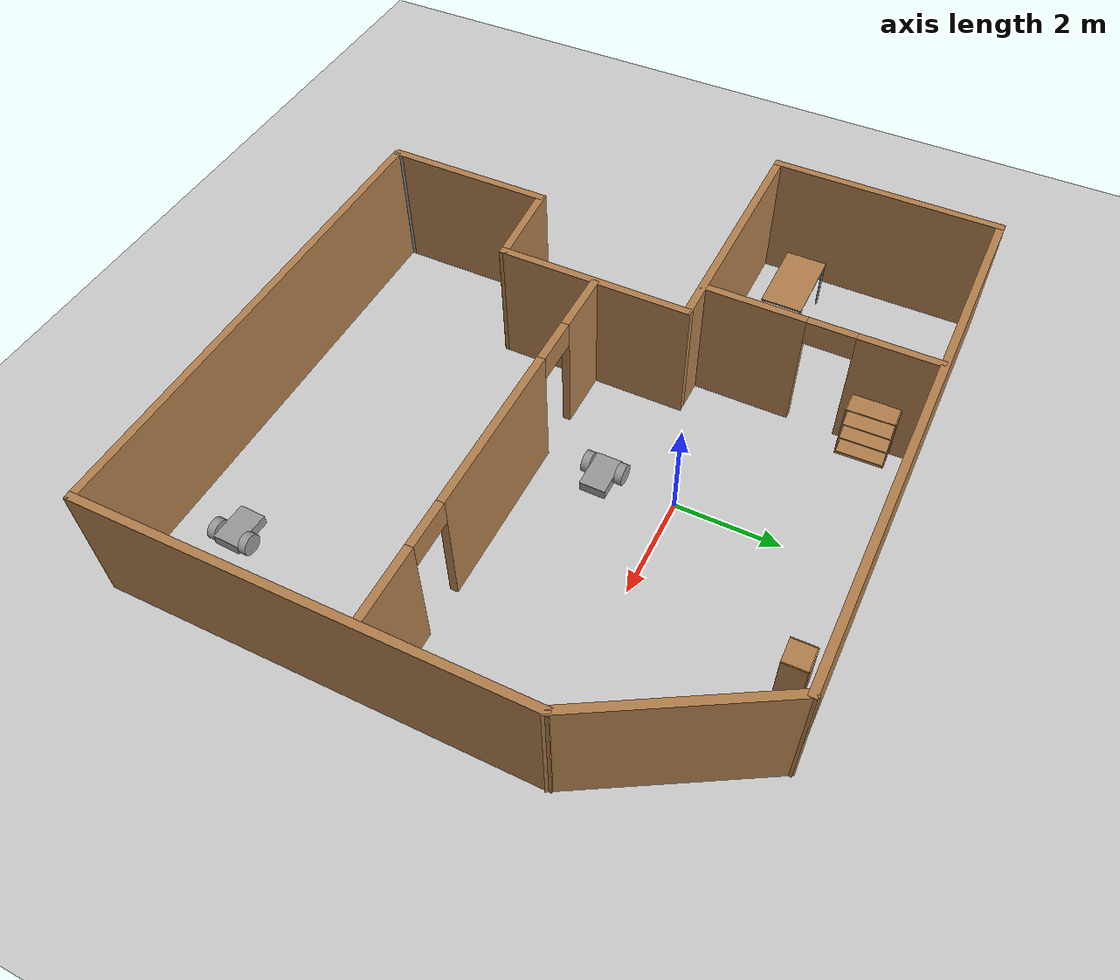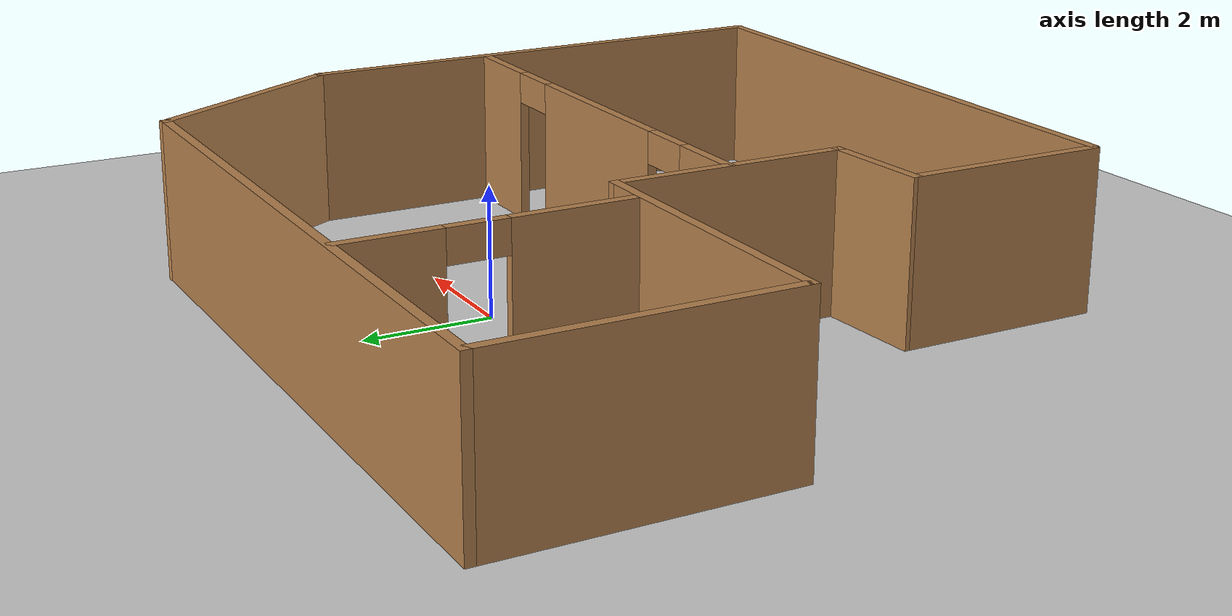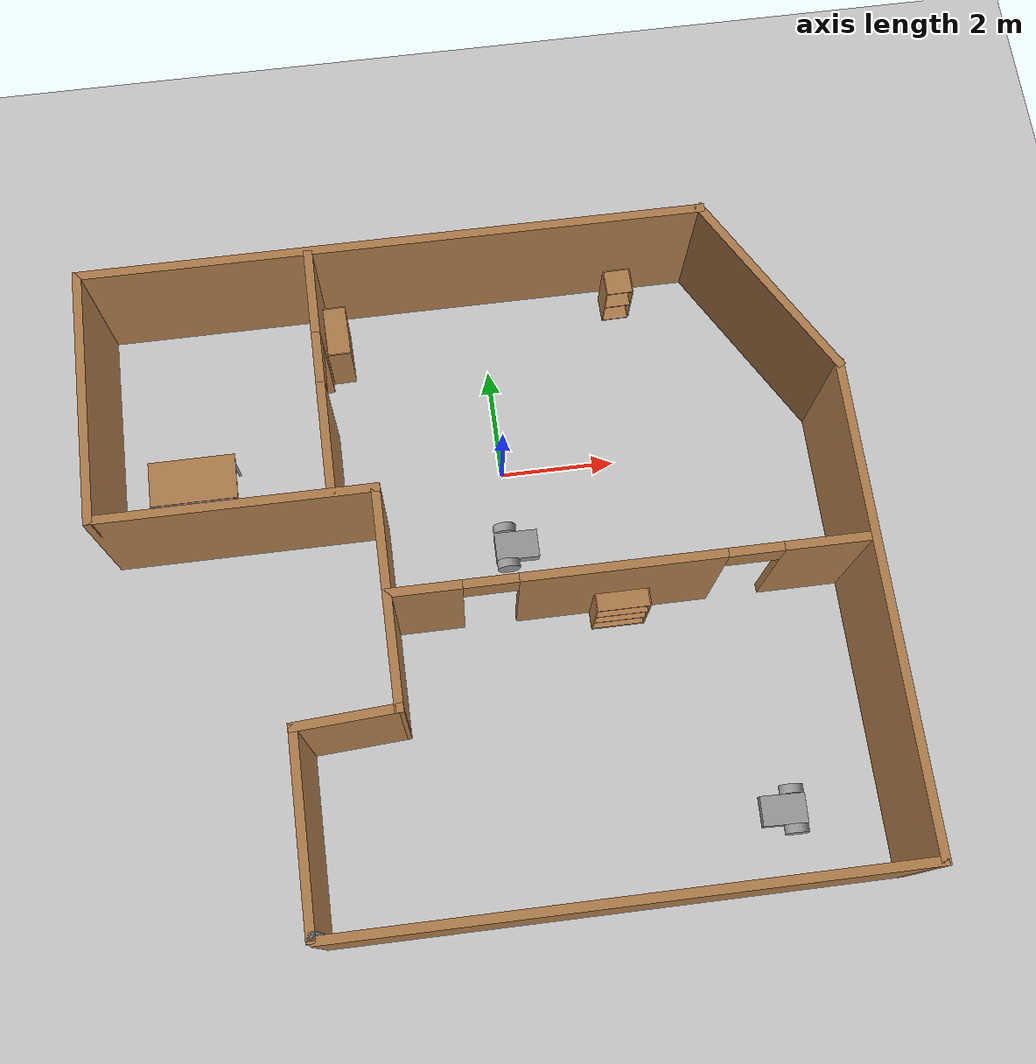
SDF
<sdf version="1.7">
 <world name="default">
  <plugin name="Welcome to 's World!" filename="libwelcome.so"/>
  <light name="sun" type="directional">
   <pose>0 0 10 0 -0 0</pose>
   <diffuse>0.8 0.8 0.8 1</diffuse>
   <specular>0.2 0.2 0.2 1</specular>
   <attenuation>
    <range>1000</range>
    <constant>0.9</constant>
    <linear>0.01</linear>
    <quadratic>0.001</quadratic>
   </attenuation>
   <direction>-0.5 0.1 -0.9</direction>
   <spot><inner_angle>0</inner_angle><outer_angle>0</outer_angle><falloff>0</falloff></spot>
  </light>
  <model name="ground_plane">
   <static>1</static>
   <link name="link">
    <collision name="collision">
     <geometry><plane><normal>0 0 1</normal><size>100 100</size></plane></geometry>
     <surface><friction><ode><mu>100</mu><mu2>50</mu2></ode></friction></surface>
    </collision>
    <visual name="visual">
     <cast_shadows>0</cast_shadows>
     <geometry><plane><normal>0 0 1</normal><size>100 100</size></plane></geometry>
     <material>
      <script><uri>file://media/materials/scripts/gazebo.material</uri><name>Gazebo/Grey</name></script>
     </material>
    </visual>
   </link>
  </model>
  <gravity>0 0 -9.8</gravity>
  <magnetic_field>6e-06 2.3e-05 -4.2e-05</magnetic_field>
  <atmosphere type="adiabatic"/>
  <physics type="ode">
   <max_step_size>0.001</max_step_size>
   <real_time_factor>1</real_time_factor>
   <real_time_update_rate>1000</real_time_update_rate>
  </physics>
  <scene><ambient>0.4 0.4 0.4 1</ambient><background>0.7 0.7 0.7 1</background><shadows>1</shadows></scene>
  <spherical_coordinates>
   <surface_model>EARTH_WGS84</surface_model>
   <latitude_deg>0</latitude_deg>
   <longitude_deg>0</longitude_deg>
   <elevation>0</elevation>
   <heading_deg>0</heading_deg>
  </spherical_coordinates>
  <model name="my_building_1">
   <pose>-0.566464 -2.09301 0 0 -0 0</pose>
   <link name="Wall_41">
    <collision name="Wall_41_Collision">
     <geometry><box><size>9.5 0.15 2.5</size></box></geometry>
     <pose>0 0 1.25 0 -0 0</pose>
    </collision>
    <visual name="Wall_41_Visual">
     <pose>0 0 1.25 0 -0 0</pose>
     <geometry><box><size>9.5 0.15 2.5</size></box></geometry>
     <material>
      <script><uri>file://media/materials/scripts/gazebo.material</uri><name>Gazebo/Wood</name></script>
      <ambient>1 1 1 1</ambient>
     </material>
     <meta><layer>0</layer></meta>
    </visual>
    <pose>1.48467 -5.62256 0 0 -0 0</pose>
   </link>
   <link name="Wall_42">
    <collision name="Wall_42_Collision">
     <geometry><box><size>8.25004 0.15 2.5</size></box></geometry>
     <pose>0 0 1.25 0 -0 0</pose>
    </collision>
    <visual name="Wall_42_Visual">
     <pose>0 0 1.25 0 -0 0</pose>
     <geometry><box><size>8.25004 0.15 2.5</size></box></geometry>
     <material>
      <script><uri>file://media/materials/scripts/gazebo.material</uri><name>Gazebo/Wood</name></script>
      <ambient>1 1 1 1</ambient>
     </material>
     <meta><layer>0</layer></meta>
    </visual>
    <pose>6.18627 -1.57256 0 0 -0 1.5708</pose>
   </link>
   <link name="Wall_43">
    <collision name="Wall_43_Collision">
     <geometry><box><size>3.75 0.15 2.5</size></box></geometry>
     <pose>0 0 1.25 0 -0 0</pose>
    </collision>
    <visual name="Wall_43_Visual">
     <pose>0 0 1.25 0 -0 0</pose>
     <geometry><box><size>3.75 0.15 2.5</size></box></geometry>
     <material>
      <script><uri>file://media/materials/scripts/gazebo.material</uri><name>Gazebo/Wood</name></script>
      <ambient>1 1 1 1</ambient>
     </material>
     <meta><layer>0</layer></meta>
    </visual>
    <pose>5.28627 4.03629 0 0 -0 2.0944</pose>
   </link>
   <link name="Wall_44">
    <collision name="Wall_44_Collision">
     <geometry><box><size>10.75 0.15 2.5</size></box></geometry>
     <pose>0 0 1.25 0 -0 0</pose>
    </collision>
    <visual name="Wall_44_Visual">
     <pose>0 0 1.25 0 -0 0</pose>
     <geometry><box><size>10.75 0.15 2.5</size></box></geometry>
     <material>
      <script><uri>file://media/materials/scripts/gazebo.material</uri><name>Gazebo/Wood</name></script>
      <ambient>1 1 1 1</ambient>
     </material>
     <meta><layer>0</layer></meta>
    </visual>
    <pose>-0.913726 5.59513 0 0 -0 3.14159</pose>
   </link>
   <link name="Wall_45">
    <collision name="Wall_45_Collision">
     <geometry><box><size>4.5 0.15 2.5</size></box></geometry>
     <pose>0 0 1.25 0 -0 0</pose>
    </collision>
    <visual name="Wall_45_Visual">
     <pose>0 0 1.25 0 -0 0</pose>
     <geometry><box><size>4.5 0.15 2.5</size></box></geometry>
     <material>
      <script><uri>file://media/materials/scripts/gazebo.material</uri><name>Gazebo/Wood</name></script>
      <ambient>1 1 1 1</ambient>
     </material>
     <meta><layer>0</layer></meta>
    </visual>
    <pose>-6.21373 3.42013 0 0 -0 -1.5708</pose>
   </link>
   <link name="Wall_46">
    <collision name="Wall_46_Collision">
     <geometry><box><size>4.75 0.15 2.5</size></box></geometry>
     <pose>0 0 1.25 0 -0 0</pose>
    </collision>
    <visual name="Wall_46_Visual">
     <pose>0 0 1.25 0 -0 0</pose>
     <geometry><box><size>4.75 0.15 2.5</size></box></geometry>
     <material>
      <script><uri>file://media/materials/scripts/gazebo.material</uri><name>Gazebo/Wood</name></script>
      <ambient>1 1 1 1</ambient>
     </material>
     <meta><layer>0</layer></meta>
    </visual>
    <pose>-3.91373 1.24513 0 0 -0 0</pose>
   </link>
   <link name="Wall_47">
    <collision name="Wall_47_Collision">
     <geometry><box><size>3.75 0.15 2.5</size></box></geometry>
     <pose>0 0 1.25 0 -0 0</pose>
    </collision>
    <visual name="Wall_47_Visual">
     <pose>0 0 1.25 0 -0 0</pose>
     <geometry><box><size>3.75 0.15 2.5</size></box></geometry>
     <material>
      <script><uri>file://media/materials/scripts/gazebo.material</uri><name>Gazebo/Wood</name></script>
      <ambient>1 1 1 1</ambient>
     </material>
     <meta><layer>0</layer></meta>
    </visual>
    <pose>-1.61373 -0.554869 0 0 -0 -1.5708</pose>
   </link>
   <link name="Wall_48">
    <collision name="Wall_48_Collision">
     <geometry><box><size>1.79152 0.15 2.5</size></box></geometry>
     <pose>0 0 1.25 0 -0 0</pose>
    </collision>
    <visual name="Wall_48_Visual">
     <pose>0 0 1.25 0 -0 0</pose>
     <geometry><box><size>1.79152 0.15 2.5</size></box></geometry>
     <material>
      <script><uri>file://media/materials/scripts/gazebo.material</uri><name>Gazebo/Wood</name></script>
      <ambient>1 1 1 1</ambient>
     </material>
     <meta><layer>0</layer></meta>
    </visual>
    <pose>-2.43301 -2.40408 0 0 -0 -3.0816</pose>
   </link>
   <link name="Wall_49">
    <collision name="Wall_49_Collision">
     <geometry><box><size>3.25 0.15 2.5</size></box></geometry>
     <pose>0 0 1.25 0 -0 0</pose>
    </collision>
    <visual name="Wall_49_Visual">
     <pose>0 0 1.25 0 -0 0</pose>
     <geometry><box><size>3.25 0.15 2.5</size></box></geometry>
     <material>
      <script><uri>file://media/materials/scripts/gazebo.material</uri><name>Gazebo/Wood</name></script>
      <ambient>1 1 1 1</ambient>
     </material>
     <meta><layer>0</layer></meta>
    </visual>
    <pose>-3.2523 -4.03388 0 0 -0 -1.5708</pose>
   </link>
   <link name="Wall_50">
    <collision name="Wall_50_Collision">
     <geometry><box><size>0.15 0.15 2.5</size></box></geometry>
     <pose>0 0 1.25 0 -0 0</pose>
    </collision>
    <visual name="Wall_50_Visual">
     <pose>0 0 1.25 0 -0 0</pose>
     <geometry><box><size>0.15 0.15 2.5</size></box></geometry>
     <material>
      <script><uri>file://media/materials/scripts/gazebo.material</uri><name>Gazebo/Grey</name></script>
      <ambient>1 1 1 1</ambient>
     </material>
     <meta><layer>0</layer></meta>
    </visual>
    <pose>-3.2523 -5.55329 0 0 -0 0</pose>
   </link>
   <link name="Wall_52">
    <pose>-2.32534 3.41711 0 0 -0 1.5708</pose>
    <visual name="Wall_52_Visual_0">
     <pose>-1.21883 0 1.25 0 -0 0</pose>
     <geometry><box><size>1.96234 0.15 2.5</size></box></geometry>
     <material>
      <script><uri>file://media/materials/scripts/gazebo.material</uri><name>Gazebo/Wood</name></script>
      <ambient>1 1 1 1</ambient>
     </material>
     <meta><layer>0</layer></meta>
    </visual>
    <collision name="Wall_52_Collision_0">
     <geometry><box><size>1.96234 0.15 2.5</size></box></geometry>
     <pose>-1.21883 0 1.25 0 -0 0</pose>
    </collision>
    <visual name="Wall_52_Visual_1">
     <pose>1.43117 0 1.25 0 -0 0</pose>
     <geometry><box><size>1.53766 0.15 2.5</size></box></geometry>
     <material>
      <script><uri>file://media/materials/scripts/gazebo.material</uri><name>Gazebo/Wood</name></script>
      <ambient>1 1 1 1</ambient>
     </material>
     <meta><layer>0</layer></meta>
    </visual>
    <collision name="Wall_52_Collision_1">
     <geometry><box><size>1.53766 0.15 2.5</size></box></geometry>
     <pose>1.43117 0 1.25 0 -0 0</pose>
    </collision>
    <visual name="Wall_52_Visual_2">
     <pose>0.212344 0 2.25 0 -0 0</pose>
     <geometry><box><size>0.9 0.15 0.5</size></box></geometry>
     <material>
      <script><uri>file://media/materials/scripts/gazebo.material</uri><name>Gazebo/Wood</name></script>
      <ambient>1 1 1 1</ambient>
     </material>
     <meta><layer>0</layer></meta>
    </visual>
    <collision name="Wall_52_Collision_2">
     <geometry><box><size>0.9 0.15 0.5</size></box></geometry>
     <pose>0.212344 0 2.25 0 -0 0</pose>
    </collision>
   </link>
   <link name="Wall_54">
    <pose>2.21366 -0.525889 0 0 -0 0</pose>
    <visual name="Wall_54_Visual_0">
     <pose>-3.26596 0 1.25 0 -0 0</pose>
     <geometry><box><size>1.26809 0.15 2.5</size></box></geometry>
     <material>
      <script><uri>file://media/materials/scripts/gazebo.material</uri><name>Gazebo/Wood</name></script>
      <ambient>1 1 1 1</ambient>
     </material>
     <meta><layer>0</layer></meta>
    </visual>
    <collision name="Wall_54_Collision_0">
     <geometry><box><size>1.26809 0.15 2.5</size></box></geometry>
     <pose>-3.26596 0 1.25 0 -0 0</pose>
    </collision>
    <visual name="Wall_54_Visual_1">
     <pose>-0.065074 0 1.25 0 -0 0</pose>
     <geometry><box><size>3.33368 0.15 2.5</size></box></geometry>
     <material>
      <script><uri>file://media/materials/scripts/gazebo.material</uri><name>Gazebo/Wood</name></script>
      <ambient>1 1 1 1</ambient>
     </material>
     <meta><layer>0</layer></meta>
    </visual>
    <collision name="Wall_54_Collision_1">
     <geometry><box><size>3.33368 0.15 2.5</size></box></geometry>
     <pose>-0.065074 0 1.25 0 -0 0</pose>
    </collision>
    <visual name="Wall_54_Visual_2">
     <pose>3.20088 0 1.25 0 -0 0</pose>
     <geometry><box><size>1.39824 0.15 2.5</size></box></geometry>
     <material>
      <script><uri>file://media/materials/scripts/gazebo.material</uri><name>Gazebo/Wood</name></script>
      <ambient>1 1 1 1</ambient>
     </material>
     <meta><layer>0</layer></meta>
    </visual>
    <collision name="Wall_54_Collision_2">
     <geometry><box><size>1.39824 0.15 2.5</size></box></geometry>
     <pose>3.20088 0 1.25 0 -0 0</pose>
    </collision>
    <visual name="Wall_54_Visual_3">
     <pose>-2.18191 0 2.25 0 -0 0</pose>
     <geometry><box><size>0.9 0.15 0.5</size></box></geometry>
     <material>
      <script><uri>file://media/materials/scripts/gazebo.material</uri><name>Gazebo/Wood</name></script>
      <ambient>1 1 1 1</ambient>
     </material>
     <meta><layer>0</layer></meta>
    </visual>
    <collision name="Wall_54_Collision_3">
     <geometry><box><size>0.9 0.15 0.5</size></box></geometry>
     <pose>-2.18191 0 2.25 0 -0 0</pose>
    </collision>
    <visual name="Wall_54_Visual_4">
     <pose>2.05176 0 2.25 0 -0 0</pose>
     <geometry><box><size>0.9 0.15 0.5</size></box></geometry>
     <material>
      <script><uri>file://media/materials/scripts/gazebo.material</uri><name>Gazebo/Wood</name></script>
      <ambient>1 1 1 1</ambient>
     </material>
     <meta><layer>0</layer></meta>
    </visual>
    <collision name="Wall_54_Collision_4">
     <geometry><box><size>0.9 0.15 0.5</size></box></geometry>
     <pose>2.05176 0 2.25 0 -0 0</pose>
    </collision>
   </link>
   <static>1</static>
  </model>
  <model name="cabinet">
   <static>1</static>
   <link name="cabinet_bottom_plate">
    <inertial>
     <pose>0 0 -1 0 -0 0</pose>
     <inertia><ixx>2.05</ixx><ixy>0</ixy><ixz>0</ixz><iyy>2.05</iyy><iyz>0</iyz><izz>2.05</izz></inertia>
     <mass>25</mass>
    </inertial>
    <collision name="cabinet_bottom_plate_geom">
     <pose>0 0 0.01 0 -0 0</pose>
     <geometry><box><size>0.45 0.45 0.02</size></box></geometry>
    </collision>
    <visual name="cabinet_bottom_plate_geom_visual">
     <pose>0 0 0.01 0 -0 0</pose>
     <geometry><box><size>0.45 0.45 0.02</size></box></geometry>
     <material>
      <script><uri>file://media/materials/scripts/gazebo.material</uri><name>Gazebo/Wood</name></script>
     </material>
    </visual>
    <collision name="cabinet_bottom_plate_geom_cabinet_back_plate">
     <pose>0.235 0 0.51 0 -0 0</pose>
     <geometry><box><size>0.02 0.45 1.02</size></box></geometry>
    </collision>
    <visual name="cabinet_bottom_plate_geom_cabinet_back_plate_visual">
     <pose>0.235 0 0.51 0 -0 0</pose>
     <geometry><box><size>0.02 0.45 1.02</size></box></geometry>
     <material>
      <script><uri>file://media/materials/scripts/gazebo.material</uri><name>Gazebo/Wood</name></script>
     </material>
    </visual>
    <collision name="cabinet_bottom_plate_geom_cabinet_left_plate">
     <pose>0 0.235 0.51 0 -0 0</pose>
     <geometry><box><size>0.45 0.02 1.02</size></box></geometry>
    </collision>
    <visual name="cabinet_bottom_plate_geom_cabinet_left_plate_visual">
     <pose>0 0.235 0.51 0 -0 0</pose>
     <geometry><box><size>0.45 0.02 1.02</size></box></geometry>
     <material>
      <script><uri>file://media/materials/scripts/gazebo.material</uri><name>Gazebo/Wood</name></script>
     </material>
    </visual>
    <collision name="cabinet_bottom_plate_geom_cabinet_middle_plate">
     <pose>0 0 0.51 0 -0 0</pose>
     <geometry><box><size>0.45 0.45 0.02</size></box></geometry>
    </collision>
    <visual name="cabinet_bottom_plate_geom_cabinet_middle_plate_visual">
     <pose>0 0 0.51 0 -0 0</pose>
     <geometry><box><size>0.45 0.45 0.02</size></box></geometry>
     <material>
      <script><uri>file://media/materials/scripts/gazebo.material</uri><name>Gazebo/Wood</name></script>
     </material>
    </visual>
    <collision name="cabinet_bottom_plate_geom_cabinet_right_plate">
     <pose>0 -0.235 0.51 0 -0 0</pose>
     <geometry><box><size>0.45 0.02 1.02</size></box></geometry>
    </collision>
    <visual name="cabinet_bottom_plate_geom_cabinet_right_plate_visual">
     <pose>0 -0.235 0.51 0 -0 0</pose>
     <geometry><box><size>0.45 0.02 1.02</size></box></geometry>
     <material>
      <script><uri>file://media/materials/scripts/gazebo.material</uri><name>Gazebo/Wood</name></script>
     </material>
    </visual>
    <collision name="cabinet_bottom_plate_geom_cabinet_top_plate">
     <pose>0 0 1.01 0 -0 0</pose>
     <geometry><box><size>0.45 0.45 0.02</size></box></geometry>
    </collision>
    <visual name="cabinet_bottom_plate_geom_cabinet_top_plate_visual">
     <pose>0 0 1.01 0 -0 0</pose>
     <geometry><box><size>0.45 0.45 0.02</size></box></geometry>
     <material>
      <script><uri>file://media/materials/scripts/gazebo.material</uri><name>Gazebo/Wood</name></script>
     </material>
    </visual>
   </link>
   <pose>2.47387 3.04753 0 0 -0 1.58724</pose>
  </model>
  <model name="bookshelf">
   <static>1</static>
   <link name="link">
    <inertial><mass>1</mass></inertial>
    <collision name="back">
     <pose>0 0.005 0.6 0 -0 0</pose>
     <geometry><box><size>0.9 0.01 1.2</size></box></geometry>
    </collision>
    <visual name="visual1">
     <pose>0 0.005 0.6 0 -0 0</pose>
     <geometry><box><size>0.9 0.01 1.2</size></box></geometry>
     <material>
      <script><uri>file://media/materials/scripts/gazebo.material</uri><name>Gazebo/Wood</name></script>
     </material>
    </visual>
    <collision name="left_side">
     <pose>0.45 -0.195 0.6 0 -0 0</pose>
     <geometry><box><size>0.02 0.4 1.2</size></box></geometry>
    </collision>
    <visual name="visual2">
     <pose>0.45 -0.195 0.6 0 -0 0</pose>
     <geometry><box><size>0.02 0.4 1.2</size></box></geometry>
     <material>
      <script><uri>file://media/materials/scripts/gazebo.material</uri><name>Gazebo/Wood</name></script>
     </material>
    </visual>
    <collision name="right_side">
     <pose>-0.45 -0.195 0.6 0 -0 0</pose>
     <geometry><box><size>0.02 0.4 1.2</size></box></geometry>
    </collision>
    <visual name="visual3">
     <pose>-0.45 -0.195 0.6 0 -0 0</pose>
     <geometry><box><size>0.02 0.4 1.2</size></box></geometry>
     <material>
      <script><uri>file://media/materials/scripts/gazebo.material</uri><name>Gazebo/Wood</name></script>
     </material>
    </visual>
    <collision name="bottom">
     <pose>0 -0.195 0.03 0 -0 0</pose>
     <geometry><box><size>0.88 0.4 0.06</size></box></geometry>
    </collision>
    <visual name="visual4">
     <pose>0 -0.195 0.03 0 -0 0</pose>
     <geometry><box><size>0.88 0.4 0.06</size></box></geometry>
     <material>
      <script><uri>file://media/materials/scripts/gazebo.material</uri><name>Gazebo/Wood</name></script>
     </material>
    </visual>
    <collision name="top">
     <pose>0 -0.195 1.19 0 -0 0</pose>
     <geometry><box><size>0.88 0.4 0.02</size></box></geometry>
    </collision>
    <visual name="visual5">
     <pose>0 -0.195 1.19 0 -0 0</pose>
     <geometry><box><size>0.88 0.4 0.02</size></box></geometry>
     <material>
      <script><uri>file://media/materials/scripts/gazebo.material</uri><name>Gazebo/Wood</name></script>
     </material>
    </visual>
    <collision name="low_shelf">
     <pose>0 -0.195 0.43 0 -0 0</pose>
     <geometry><box><size>0.88 0.4 0.02</size></box></geometry>
    </collision>
    <visual name="visual6">
     <pose>0 -0.195 0.43 0 -0 0</pose>
     <geometry><box><size>0.88 0.4 0.02</size></box></geometry>
     <material>
      <script><uri>file://media/materials/scripts/gazebo.material</uri><name>Gazebo/Wood</name></script>
     </material>
    </visual>
    <collision name="high_shelf">
     <pose>0 -0.195 0.8 0 -0 0</pose>
     <geometry><box><size>0.88 0.4 0.02</size></box></geometry>
    </collision>
    <visual name="visual7">
     <pose>0 -0.195 0.8 0 -0 0</pose>
     <geometry><box><size>0.88 0.4 0.02</size></box></geometry>
     <material>
      <script><uri>file://media/materials/scripts/gazebo.material</uri><name>Gazebo/Wood</name></script>
     </material>
    </visual>
   </link>
   <pose>-2.8111 2.60741 0 0 -0 1.59536</pose>
  </model>
  <model name="table">
   <static>1</static>
   <link name="link">
    <collision name="surface">
     <pose>0 0 1 0 -0 0</pose>
     <geometry><box><size>1.5 0.8 0.03</size></box></geometry>
     <surface><friction><ode><mu>0.6</mu><mu2>0.6</mu2></ode></friction></surface>
    </collision>
    <visual name="visual1">
     <pose>0 0 1 0 -0 0</pose>
     <geometry><box><size>1.5 0.8 0.03</size></box></geometry>
     <material>
      <script><uri>file://media/materials/scripts/gazebo.material</uri><name>Gazebo/Wood</name></script>
     </material>
    </visual>
    <collision name="front_left_leg">
     <pose>0.68 0.38 0.5 0 -0 0</pose>
     <geometry><cylinder><radius>0.02</radius><length>1</length></cylinder></geometry>
    </collision>
    <visual name="front_left_leg">
     <pose>0.68 0.38 0.5 0 -0 0</pose>
     <geometry><cylinder><radius>0.02</radius><length>1</length></cylinder></geometry>
     <material>
      <script><uri>file://media/materials/scripts/gazebo.material</uri><name>Gazebo/Grey</name></script>
     </material>
    </visual>
    <collision name="front_right_leg">
     <pose>0.68 -0.38 0.5 0 -0 0</pose>
     <geometry><cylinder><radius>0.02</radius><length>1</length></cylinder></geometry>
    </collision>
    <visual name="front_right_leg">
     <pose>0.68 -0.38 0.5 0 -0 0</pose>
     <geometry><cylinder><radius>0.02</radius><length>1</length></cylinder></geometry>
     <material>
      <script><uri>file://media/materials/scripts/gazebo.material</uri><name>Gazebo/Grey</name></script>
     </material>
    </visual>
    <collision name="back_right_leg">
     <pose>-0.68 -0.38 0.5 0 -0 0</pose>
     <geometry><cylinder><radius>0.02</radius><length>1</length></cylinder></geometry>
    </collision>
    <visual name="back_right_leg">
     <pose>-0.68 -0.38 0.5 0 -0 0</pose>
     <geometry><cylinder><radius>0.02</radius><length>1</length></cylinder></geometry>
     <material>
      <script><uri>file://media/materials/scripts/gazebo.material</uri><name>Gazebo/Grey</name></script>
     </material>
    </visual>
    <collision name="back_left_leg">
     <pose>-0.68 0.38 0.5 0 -0 0</pose>
     <geometry><cylinder><radius>0.02</radius><length>1</length></cylinder></geometry>
    </collision>
    <visual name="back_left_leg">
     <pose>-0.68 0.38 0.5 0 -0 0</pose>
     <geometry><cylinder><radius>0.02</radius><length>1</length></cylinder></geometry>
     <material>
      <script><uri>file://media/materials/scripts/gazebo.material</uri><name>Gazebo/Grey</name></script>
     </material>
    </visual>
   </link>
   <pose>-5.33417 0.203849 0 0 -0 0</pose>
  </model>
  <model name="bookshelf_0">
   <static>1</static>
   <link name="link">
    <inertial><mass>1</mass></inertial>
    <collision name="back">
     <pose>0 0.005 0.6 0 -0 0</pose>
     <geometry><box><size>0.9 0.01 1.2</size></box></geometry>
    </collision>
    <visual name="visual1">
     <pose>0 0.005 0.6 0 -0 0</pose>
     <geometry><box><size>0.9 0.01 1.2</size></box></geometry>
     <material>
      <script><uri>file://media/materials/scripts/gazebo.material</uri><name>Gazebo/Wood</name></script>
     </material>
    </visual>
    <collision name="left_side">
     <pose>0.45 -0.195 0.6 0 -0 0</pose>
     <geometry><box><size>0.02 0.4 1.2</size></box></geometry>
    </collision>
    <visual name="visual2">
     <pose>0.45 -0.195 0.6 0 -0 0</pose>
     <geometry><box><size>0.02 0.4 1.2</size></box></geometry>
     <material>
      <script><uri>file://media/materials/scripts/gazebo.material</uri><name>Gazebo/Wood</name></script>
     </material>
    </visual>
    <collision name="right_side">
     <pose>-0.45 -0.195 0.6 0 -0 0</pose>
     <geometry><box><size>0.02 0.4 1.2</size></box></geometry>
    </collision>
    <visual name="visual3">
     <pose>-0.45 -0.195 0.6 0 -0 0</pose>
     <geometry><box><size>0.02 0.4 1.2</size></box></geometry>
     <material>
      <script><uri>file://media/materials/scripts/gazebo.material</uri><name>Gazebo/Wood</name></script>
     </material>
    </visual>
    <collision name="bottom">
     <pose>0 -0.195 0.03 0 -0 0</pose>
     <geometry><box><size>0.88 0.4 0.06</size></box></geometry>
    </collision>
    <visual name="visual4">
     <pose>0 -0.195 0.03 0 -0 0</pose>
     <geometry><box><size>0.88 0.4 0.06</size></box></geometry>
     <material>
      <script><uri>file://media/materials/scripts/gazebo.material</uri><name>Gazebo/Wood</name></script>
     </material>
    </visual>
    <collision name="top">
     <pose>0 -0.195 1.19 0 -0 0</pose>
     <geometry><box><size>0.88 0.4 0.02</size></box></geometry>
    </collision>
    <visual name="visual5">
     <pose>0 -0.195 1.19 0 -0 0</pose>
     <geometry><box><size>0.88 0.4 0.02</size></box></geometry>
     <material>
      <script><uri>file://media/materials/scripts/gazebo.material</uri><name>Gazebo/Wood</name></script>
     </material>
    </visual>
    <collision name="low_shelf">
     <pose>0 -0.195 0.43 0 -0 0</pose>
     <geometry><box><size>0.88 0.4 0.02</size></box></geometry>
    </collision>
    <visual name="visual6">
     <pose>0 -0.195 0.43 0 -0 0</pose>
     <geometry><box><size>0.88 0.4 0.02</size></box></geometry>
     <material>
      <script><uri>file://media/materials/scripts/gazebo.material</uri><name>Gazebo/Wood</name></script>
     </material>
    </visual>
    <collision name="high_shelf">
     <pose>0 -0.195 0.8 0 -0 0</pose>
     <geometry><box><size>0.88 0.4 0.02</size></box></geometry>
    </collision>
    <visual name="visual7">
     <pose>0 -0.195 0.8 0 -0 0</pose>
     <geometry><box><size>0.88 0.4 0.02</size></box></geometry>
     <material>
      <script><uri>file://media/materials/scripts/gazebo.material</uri><name>Gazebo/Wood</name></script>
     </material>
    </visual>
   </link>
   <pose>1.65122 -2.60474 0 0 -0 0</pose>
  </model>
  <model name="model">
   <link name="link_0">
    <inertial>
     <mass>1</mass>
     <inertia>
      <ixx>0.166667</ixx>
      <ixy>0</ixy>
      <ixz>0</ixz>
      <iyy>0.166667</iyy>
      <iyz>0</iyz>
      <izz>0.166667</izz>
     </inertia>
    </inertial>
    <pose>0.02875 0.00625 -0.007494 0 -0 0</pose>
    <visual name="visual">
     <geometry><box><size>0.75 0.5 0.2</size></box></geometry>
     <material>
      <lighting>1</lighting>
      <script><uri>file://media/materials/scripts/gazebo.material</uri><name>Gazebo/Grey</name></script>
      <shader type="pixel"><normal_map>__default__</normal_map></shader>
      <ambient>0.3 0.3 0.3 1</ambient>
      <diffuse>0.7 0.7 0.7 1</diffuse>
      <specular>0.01 0.01 0.01 1</specular>
      <emissive>0 0 0 1</emissive>
     </material>
    </visual>
    <collision name="collision">
     <geometry><box><size>0.75 0.5 0.2</size></box></geometry>
     <surface>
      <friction>
       <ode><mu>1</mu><mu2>1</mu2><fdir1>0 0 0</fdir1><slip1>0</slip1><slip2>0</slip2></ode>
       <torsional>
        <coefficient>1</coefficient>
        <patch_radius>0</patch_radius>
        <surface_radius>0</surface_radius>
        <use_patch_radius>1</use_patch_radius>
        <ode><slip>0</slip></ode>
       </torsional>
      </friction>
      <bounce><restitution_coefficient>0</restitution_coefficient><threshold>1e+06</threshold></bounce>
      <contact>
       <collide_without_contact>0</collide_without_contact>
       <collide_without_contact_bitmask>1</collide_without_contact_bitmask>
       <collide_bitmask>1</collide_bitmask>
       <ode>
        <soft_cfm>0</soft_cfm>
        <soft_erp>0.2</soft_erp>
        <kp>1e+13</kp>
        <kd>1</kd>
        <max_vel>0.01</max_vel>
        <min_depth>0</min_depth>
       </ode>
       <bullet>
        <split_impulse>1</split_impulse>
        <split_impulse_penetration_threshold>-0.01</split_impulse_penetration_threshold>
        <soft_cfm>0</soft_cfm>
        <soft_erp>0.2</soft_erp>
        <kp>1e+13</kp>
        <kd>1</kd>
       </bullet>
      </contact>
     </surface>
    </collision>
   </link>
   <link name="link_1">
    <inertial>
     <mass>1</mass>
     <inertia><ixx>0.145833</ixx><ixy>0</ixy><ixz>0</ixz><iyy>0.145833</iyy><iyz>0</iyz><izz>0.125</izz></inertia>
    </inertial>
    <pose>-0.14625 -0.318909 0.012481 1.57 -0 0</pose>
    <visual name="visual">
     <geometry><cylinder><radius>0.2</radius><length>0.15</length></cylinder></geometry>
     <material>
      <lighting>1</lighting>
      <script><uri>file://media/materials/scripts/gazebo.material</uri><name>Gazebo/Grey</name></script>
      <shader type="pixel"><normal_map>__default__</normal_map></shader>
      <ambient>0.3 0.3 0.3 1</ambient>
      <diffuse>0.7 0.7 0.7 1</diffuse>
      <specular>0.01 0.01 0.01 1</specular>
      <emissive>0 0 0 1</emissive>
     </material>
    </visual>
    <collision name="collision">
     <geometry><cylinder><radius>0.2</radius><length>0.15</length></cylinder></geometry>
     <surface>
      <friction>
       <ode><mu>1</mu><mu2>1</mu2><fdir1>0 0 0</fdir1><slip1>0</slip1><slip2>0</slip2></ode>
       <torsional>
        <coefficient>1</coefficient>
        <patch_radius>0</patch_radius>
        <surface_radius>0</surface_radius>
        <use_patch_radius>1</use_patch_radius>
        <ode><slip>0</slip></ode>
       </torsional>
      </friction>
      <bounce><restitution_coefficient>0</restitution_coefficient><threshold>1e+06</threshold></bounce>
      <contact>
       <collide_without_contact>0</collide_without_contact>
       <collide_without_contact_bitmask>1</collide_without_contact_bitmask>
       <collide_bitmask>1</collide_bitmask>
       <ode>
        <soft_cfm>0</soft_cfm>
        <soft_erp>0.2</soft_erp>
        <kp>1e+13</kp>
        <kd>1</kd>
        <max_vel>0.01</max_vel>
        <min_depth>0</min_depth>
       </ode>
       <bullet>
        <split_impulse>1</split_impulse>
        <split_impulse_penetration_threshold>-0.01</split_impulse_penetration_threshold>
        <soft_cfm>0</soft_cfm>
        <soft_erp>0.2</soft_erp>
        <kp>1e+13</kp>
        <kd>1</kd>
       </bullet>
      </contact>
     </surface>
    </collision>
   </link>
   <link name="link_1_clone">
    <inertial>
     <mass>1</mass>
     <inertia><ixx>0.145833</ixx><ixy>0</ixy><ixz>0</ixz><iyy>0.145833</iyy><iyz>0</iyz><izz>0.125</izz></inertia>
    </inertial>
    <pose>-0.14625 0.331409 0.012506 1.57 -0 0</pose>
    <visual name="visual">
     <geometry><cylinder><radius>0.2</radius><length>0.15</length></cylinder></geometry>
     <material>
      <lighting>1</lighting>
      <script><uri>file://media/materials/scripts/gazebo.material</uri><name>Gazebo/Grey</name></script>
      <shader type="pixel"><normal_map>__default__</normal_map></shader>
      <ambient>0.3 0.3 0.3 1</ambient>
      <diffuse>0.7 0.7 0.7 1</diffuse>
      <specular>0.01 0.01 0.01 1</specular>
      <emissive>0 0 0 1</emissive>
     </material>
    </visual>
    <collision name="collision">
     <geometry><cylinder><radius>0.2</radius><length>0.15</length></cylinder></geometry>
     <surface>
      <friction>
       <ode><mu>1</mu><mu2>1</mu2><fdir1>0 0 0</fdir1><slip1>0</slip1><slip2>0</slip2></ode>
       <torsional>
        <coefficient>1</coefficient>
        <patch_radius>0</patch_radius>
        <surface_radius>0</surface_radius>
        <use_patch_radius>1</use_patch_radius>
        <ode><slip>0</slip></ode>
       </torsional>
      </friction>
      <bounce><restitution_coefficient>0</restitution_coefficient><threshold>1e+06</threshold></bounce>
      <contact>
       <collide_without_contact>0</collide_without_contact>
       <collide_without_contact_bitmask>1</collide_without_contact_bitmask>
       <collide_bitmask>1</collide_bitmask>
       <ode>
        <soft_cfm>0</soft_cfm>
        <soft_erp>0.2</soft_erp>
        <kp>1e+13</kp>
        <kd>1</kd>
        <max_vel>0.01</max_vel>
        <min_depth>0</min_depth>
       </ode>
       <bullet>
        <split_impulse>1</split_impulse>
        <split_impulse_penetration_threshold>-0.01</split_impulse_penetration_threshold>
        <soft_cfm>0</soft_cfm>
        <soft_erp>0.2</soft_erp>
        <kp>1e+13</kp>
        <kd>1</kd>
       </bullet>
      </contact>
     </surface>
    </collision>
   </link>
   <link name="link_2">
    <inertial>
     <mass>1</mass>
     <inertia><ixx>0.1</ixx><ixy>0</ixy><ixz>0</ixz><iyy>0.1</iyy><iyz>0</iyz><izz>0.1</izz></inertia>
    </inertial>
    <pose>0.26375 -0.01875 -0.087494 0 -0 0</pose>
    <visual name="visual">
     <geometry><sphere><radius>0.09</radius></sphere></geometry>
     <material>
      <lighting>1</lighting>
      <script><uri>file://media/materials/scripts/gazebo.material</uri><name>Gazebo/Grey</name></script>
      <shader type="pixel"><normal_map>__default__</normal_map></shader>
      <ambient>0.3 0.3 0.3 1</ambient>
      <diffuse>0.7 0.7 0.7 1</diffuse>
      <specular>0.01 0.01 0.01 1</specular>
      <emissive>0 0 0 1</emissive>
     </material>
    </visual>
    <collision name="collision">
     <geometry><sphere><radius>0.09</radius></sphere></geometry>
     <surface>
      <friction>
       <ode><mu>1</mu><mu2>1</mu2><fdir1>0 0 0</fdir1><slip1>0</slip1><slip2>0</slip2></ode>
       <torsional>
        <coefficient>1</coefficient>
        <patch_radius>0</patch_radius>
        <surface_radius>0</surface_radius>
        <use_patch_radius>1</use_patch_radius>
        <ode><slip>0</slip></ode>
       </torsional>
      </friction>
      <bounce><restitution_coefficient>0</restitution_coefficient><threshold>1e+06</threshold></bounce>
      <contact>
       <collide_without_contact>0</collide_without_contact>
       <collide_without_contact_bitmask>1</collide_without_contact_bitmask>
       <collide_bitmask>1</collide_bitmask>
       <ode>
        <soft_cfm>0</soft_cfm>
        <soft_erp>0.2</soft_erp>
        <kp>1e+13</kp>
        <kd>1</kd>
        <max_vel>0.01</max_vel>
        <min_depth>0</min_depth>
       </ode>
       <bullet>
        <split_impulse>1</split_impulse>
        <split_impulse_penetration_threshold>-0.01</split_impulse_penetration_threshold>
        <soft_cfm>0</soft_cfm>
        <soft_erp>0.2</soft_erp>
        <kp>1e+13</kp>
        <kd>1</kd>
       </bullet>
      </contact>
     </surface>
    </collision>
   </link>
   <joint name="link_0_JOINT_0" type="revolute">
    <parent>link_0</parent>
    <child>link_1</child>
    <axis>
     <xyz>0 0 1</xyz>
     <limit>
      <lower>-1.79769e+308</lower>
      <upper>1.79769e+308</upper>
      <effort>-1</effort>
      <velocity>-1</velocity>
     </limit>
     <dynamics>
      <spring_reference>0</spring_reference>
      <spring_stiffness>0</spring_stiffness>
      <damping>0</damping>
     </dynamics>
    </axis>
    <physics>
     <ode><limit><cfm>0</cfm><erp>0.2</erp></limit><suspension><cfm>0</cfm><erp>0.2</erp></suspension></ode>
    </physics>
   </joint>
   <joint name="link_0_JOINT_1" type="revolute">
    <parent>link_0</parent>
    <child>link_1_clone</child>
    <axis>
     <xyz>0 0 1</xyz>
     <limit>
      <lower>-1.79769e+308</lower>
      <upper>1.79769e+308</upper>
      <effort>-1</effort>
      <velocity>-1</velocity>
     </limit>
     <dynamics>
      <spring_reference>0</spring_reference>
      <spring_stiffness>0</spring_stiffness>
      <damping>0</damping>
     </dynamics>
    </axis>
    <physics>
     <ode><limit><cfm>0</cfm><erp>0.2</erp></limit><suspension><cfm>0</cfm><erp>0.2</erp></suspension></ode>
    </physics>
   </joint>
   <joint name="link_0_JOINT_2" type="ball">
    <parent>link_0</parent>
    <child>link_2</child>
    <physics>
     <ode><limit><cfm>0</cfm><erp>0.2</erp></limit><suspension><cfm>0</cfm><erp>0.2</erp></suspension></ode>
    </physics>
   </joint>
   <static>0</static>
   <pose>0.053956 -1.40633 0.183967 -3.8e-05 0.024659 -0.004269</pose>
  </model>
  <model name="model_0">
   <link name="link_0">
    <inertial>
     <mass>1</mass>
     <inertia>
      <ixx>0.166667</ixx>
      <ixy>0</ixy>
      <ixz>0</ixz>
      <iyy>0.166667</iyy>
      <iyz>0</iyz>
      <izz>0.166667</izz>
     </inertia>
    </inertial>
    <pose>0.02875 0.00625 -0.007494 0 -0 0</pose>
    <visual name="visual">
     <geometry><box><size>0.75 0.5 0.2</size></box></geometry>
     <material>
      <lighting>1</lighting>
      <script><uri>file://media/materials/scripts/gazebo.material</uri><name>Gazebo/Grey</name></script>
      <shader type="pixel"><normal_map>__default__</normal_map></shader>
      <ambient>0.3 0.3 0.3 1</ambient>
      <diffuse>0.7 0.7 0.7 1</diffuse>
      <specular>0.01 0.01 0.01 1</specular>
      <emissive>0 0 0 1</emissive>
     </material>
    </visual>
    <collision name="collision">
     <geometry><box><size>0.75 0.5 0.2</size></box></geometry>
     <surface>
      <friction>
       <ode><mu>1</mu><mu2>1</mu2><fdir1>0 0 0</fdir1><slip1>0</slip1><slip2>0</slip2></ode>
       <torsional>
        <coefficient>1</coefficient>
        <patch_radius>0</patch_radius>
        <surface_radius>0</surface_radius>
        <use_patch_radius>1</use_patch_radius>
        <ode><slip>0</slip></ode>
       </torsional>
      </friction>
      <bounce><restitution_coefficient>0</restitution_coefficient><threshold>1e+06</threshold></bounce>
      <contact>
       <collide_without_contact>0</collide_without_contact>
       <collide_without_contact_bitmask>1</collide_without_contact_bitmask>
       <collide_bitmask>1</collide_bitmask>
       <ode>
        <soft_cfm>0</soft_cfm>
        <soft_erp>0.2</soft_erp>
        <kp>1e+13</kp>
        <kd>1</kd>
        <max_vel>0.01</max_vel>
        <min_depth>0</min_depth>
       </ode>
       <bullet>
        <split_impulse>1</split_impulse>
        <split_impulse_penetration_threshold>-0.01</split_impulse_penetration_threshold>
        <soft_cfm>0</soft_cfm>
        <soft_erp>0.2</soft_erp>
        <kp>1e+13</kp>
        <kd>1</kd>
       </bullet>
      </contact>
     </surface>
    </collision>
   </link>
   <link name="link_1">
    <inertial>
     <mass>1</mass>
     <inertia><ixx>0.145833</ixx><ixy>0</ixy><ixz>0</ixz><iyy>0.145833</iyy><iyz>0</iyz><izz>0.125</izz></inertia>
    </inertial>
    <pose>-0.14625 -0.318909 0.012481 1.57 -0 0</pose>
    <visual name="visual">
     <geometry><cylinder><radius>0.2</radius><length>0.15</length></cylinder></geometry>
     <material>
      <lighting>1</lighting>
      <script><uri>file://media/materials/scripts/gazebo.material</uri><name>Gazebo/Grey</name></script>
      <shader type="pixel"><normal_map>__default__</normal_map></shader>
      <ambient>0.3 0.3 0.3 1</ambient>
      <diffuse>0.7 0.7 0.7 1</diffuse>
      <specular>0.01 0.01 0.01 1</specular>
      <emissive>0 0 0 1</emissive>
     </material>
    </visual>
    <collision name="collision">
     <geometry><cylinder><radius>0.2</radius><length>0.15</length></cylinder></geometry>
     <surface>
      <friction>
       <ode><mu>1</mu><mu2>1</mu2><fdir1>0 0 0</fdir1><slip1>0</slip1><slip2>0</slip2></ode>
       <torsional>
        <coefficient>1</coefficient>
        <patch_radius>0</patch_radius>
        <surface_radius>0</surface_radius>
        <use_patch_radius>1</use_patch_radius>
        <ode><slip>0</slip></ode>
       </torsional>
      </friction>
      <bounce><restitution_coefficient>0</restitution_coefficient><threshold>1e+06</threshold></bounce>
      <contact>
       <collide_without_contact>0</collide_without_contact>
       <collide_without_contact_bitmask>1</collide_without_contact_bitmask>
       <collide_bitmask>1</collide_bitmask>
       <ode>
        <soft_cfm>0</soft_cfm>
        <soft_erp>0.2</soft_erp>
        <kp>1e+13</kp>
        <kd>1</kd>
        <max_vel>0.01</max_vel>
        <min_depth>0</min_depth>
       </ode>
       <bullet>
        <split_impulse>1</split_impulse>
        <split_impulse_penetration_threshold>-0.01</split_impulse_penetration_threshold>
        <soft_cfm>0</soft_cfm>
        <soft_erp>0.2</soft_erp>
        <kp>1e+13</kp>
        <kd>1</kd>
       </bullet>
      </contact>
     </surface>
    </collision>
   </link>
   <link name="link_1_clone">
    <inertial>
     <mass>1</mass>
     <inertia><ixx>0.145833</ixx><ixy>0</ixy><ixz>0</ixz><iyy>0.145833</iyy><iyz>0</iyz><izz>0.125</izz></inertia>
    </inertial>
    <pose>-0.14625 0.331409 0.012506 1.57 -0 0</pose>
    <visual name="visual">
     <geometry><cylinder><radius>0.2</radius><length>0.15</length></cylinder></geometry>
     <material>
      <lighting>1</lighting>
      <script><uri>file://media/materials/scripts/gazebo.material</uri><name>Gazebo/Grey</name></script>
      <shader type="pixel"><normal_map>__default__</normal_map></shader>
      <ambient>0.3 0.3 0.3 1</ambient>
      <diffuse>0.7 0.7 0.7 1</diffuse>
      <specular>0.01 0.01 0.01 1</specular>
      <emissive>0 0 0 1</emissive>
     </material>
    </visual>
    <collision name="collision">
     <geometry><cylinder><radius>0.2</radius><length>0.15</length></cylinder></geometry>
     <surface>
      <friction>
       <ode><mu>1</mu><mu2>1</mu2><fdir1>0 0 0</fdir1><slip1>0</slip1><slip2>0</slip2></ode>
       <torsional>
        <coefficient>1</coefficient>
        <patch_radius>0</patch_radius>
        <surface_radius>0</surface_radius>
        <use_patch_radius>1</use_patch_radius>
        <ode><slip>0</slip></ode>
       </torsional>
      </friction>
      <bounce><restitution_coefficient>0</restitution_coefficient><threshold>1e+06</threshold></bounce>
      <contact>
       <collide_without_contact>0</collide_without_contact>
       <collide_without_contact_bitmask>1</collide_without_contact_bitmask>
       <collide_bitmask>1</collide_bitmask>
       <ode>
        <soft_cfm>0</soft_cfm>
        <soft_erp>0.2</soft_erp>
        <kp>1e+13</kp>
        <kd>1</kd>
        <max_vel>0.01</max_vel>
        <min_depth>0</min_depth>
       </ode>
       <bullet>
        <split_impulse>1</split_impulse>
        <split_impulse_penetration_threshold>-0.01</split_impulse_penetration_threshold>
        <soft_cfm>0</soft_cfm>
        <soft_erp>0.2</soft_erp>
        <kp>1e+13</kp>
        <kd>1</kd>
       </bullet>
      </contact>
     </surface>
    </collision>
   </link>
   <link name="link_2">
    <inertial>
     <mass>1</mass>
     <inertia><ixx>0.1</ixx><ixy>0</ixy><ixz>0</ixz><iyy>0.1</iyy><iyz>0</iyz><izz>0.1</izz></inertia>
    </inertial>
    <pose>0.26375 -0.01875 -0.087494 0 -0 0</pose>
    <visual name="visual">
     <geometry><sphere><radius>0.09</radius></sphere></geometry>
     <material>
      <lighting>1</lighting>
      <script><uri>file://media/materials/scripts/gazebo.material</uri><name>Gazebo/Grey</name></script>
      <shader type="pixel"><normal_map>__default__</normal_map></shader>
      <ambient>0.3 0.3 0.3 1</ambient>
      <diffuse>0.7 0.7 0.7 1</diffuse>
      <specular>0.01 0.01 0.01 1</specular>
      <emissive>0 0 0 1</emissive>
     </material>
    </visual>
    <collision name="collision">
     <geometry><sphere><radius>0.09</radius></sphere></geometry>
     <surface>
      <friction>
       <ode><mu>1</mu><mu2>1</mu2><fdir1>0 0 0</fdir1><slip1>0</slip1><slip2>0</slip2></ode>
       <torsional>
        <coefficient>1</coefficient>
        <patch_radius>0</patch_radius>
        <surface_radius>0</surface_radius>
        <use_patch_radius>1</use_patch_radius>
        <ode><slip>0</slip></ode>
       </torsional>
      </friction>
      <bounce><restitution_coefficient>0</restitution_coefficient><threshold>1e+06</threshold></bounce>
      <contact>
       <collide_without_contact>0</collide_without_contact>
       <collide_without_contact_bitmask>1</collide_without_contact_bitmask>
       <collide_bitmask>1</collide_bitmask>
       <ode>
        <soft_cfm>0</soft_cfm>
        <soft_erp>0.2</soft_erp>
        <kp>1e+13</kp>
        <kd>1</kd>
        <max_vel>0.01</max_vel>
        <min_depth>0</min_depth>
       </ode>
       <bullet>
        <split_impulse>1</split_impulse>
        <split_impulse_penetration_threshold>-0.01</split_impulse_penetration_threshold>
        <soft_cfm>0</soft_cfm>
        <soft_erp>0.2</soft_erp>
        <kp>1e+13</kp>
        <kd>1</kd>
       </bullet>
      </contact>
     </surface>
    </collision>
   </link>
   <joint name="link_0_JOINT_0" type="revolute">
    <parent>link_0</parent>
    <child>link_1</child>
    <axis>
     <xyz>0 0 1</xyz>
     <limit>
      <lower>-1.79769e+308</lower>
      <upper>1.79769e+308</upper>
      <effort>-1</effort>
      <velocity>-1</velocity>
     </limit>
     <dynamics>
      <spring_reference>0</spring_reference>
      <spring_stiffness>0</spring_stiffness>
      <damping>0</damping>
     </dynamics>
    </axis>
    <physics>
     <ode><limit><cfm>0</cfm><erp>0.2</erp></limit><suspension><cfm>0</cfm><erp>0.2</erp></suspension></ode>
    </physics>
   </joint>
   <joint name="link_0_JOINT_1" type="revolute">
    <parent>link_0</parent>
    <child>link_1_clone</child>
    <axis>
     <xyz>0 0 1</xyz>
     <limit>
      <lower>-1.79769e+308</lower>
      <upper>1.79769e+308</upper>
      <effort>-1</effort>
      <velocity>-1</velocity>
     </limit>
     <dynamics>
      <spring_reference>0</spring_reference>
      <spring_stiffness>0</spring_stiffness>
      <damping>0</damping>
     </dynamics>
    </axis>
    <physics>
     <ode><limit><cfm>0</cfm><erp>0.2</erp></limit><suspension><cfm>0</cfm><erp>0.2</erp></suspension></ode>
    </physics>
   </joint>
   <joint name="link_0_JOINT_2" type="ball">
    <parent>link_0</parent>
    <child>link_2</child>
    <physics>
     <ode><limit><cfm>0</cfm><erp>0.2</erp></limit><suspension><cfm>0</cfm><erp>0.2</erp></suspension></ode>
    </physics>
   </joint>
   <static>0</static>
   <pose>3.9104 -6.48145 0.183967 -3.8e-05 0.024659 3.10641</pose>
  </model>
 </world>
</sdf>
